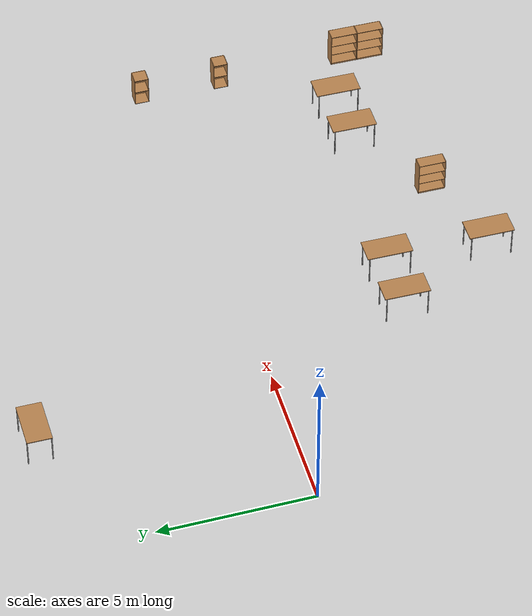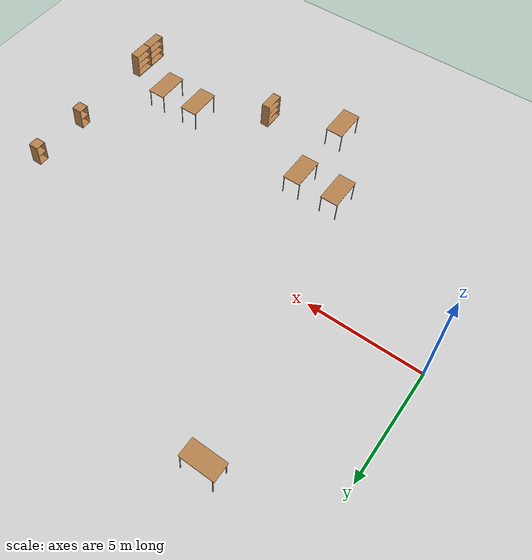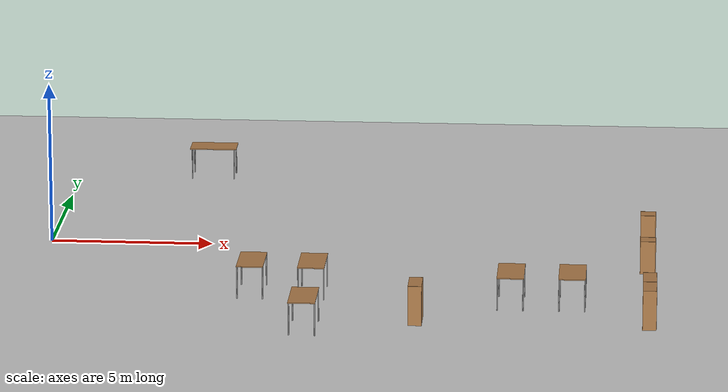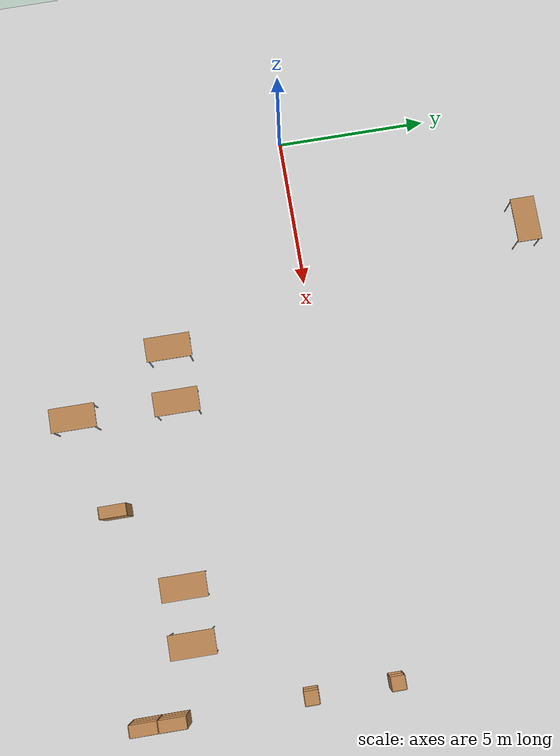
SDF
<sdf version="1.6">
 <world name="default">
  <model name="ground_plane">
   <static>1</static>
   <link name="link">
    <collision name="collision">
     <geometry><plane><normal>0 0 1</normal><size>100 100</size></plane></geometry>
     <surface>
      <contact><collide_bitmask>65535</collide_bitmask></contact>
      <friction><ode><mu>100</mu><mu2>50</mu2></ode></friction>
     </surface>
    </collision>
    <visual name="visual">
     <cast_shadows>0</cast_shadows>
     <geometry><plane><normal>0 0 1</normal><size>100 100</size></plane></geometry>
     <material>
      <script><uri>file://media/materials/scripts/gazebo.material</uri><name>Gazebo/Grey</name></script>
     </material>
    </visual>
   </link>
  </model>
  <model name="bookshelf_clone_2">
   <static>1</static>
   <link name="link">
    <inertial><mass>1</mass></inertial>
    <collision name="back">
     <pose>0 0.005 0.6 0 -0 0</pose>
     <geometry><box><size>0.9 0.01 1.2</size></box></geometry>
    </collision>
    <visual name="visual1">
     <pose>0 0.005 0.6 0 -0 0</pose>
     <geometry><box><size>0.9 0.01 1.2</size></box></geometry>
     <material>
      <script><uri>file://media/materials/scripts/gazebo.material</uri><name>Gazebo/Wood</name></script>
     </material>
    </visual>
    <collision name="left_side">
     <pose>0.45 -0.195 0.6 0 -0 0</pose>
     <geometry><box><size>0.02 0.4 1.2</size></box></geometry>
    </collision>
    <visual name="visual2">
     <pose>0.45 -0.195 0.6 0 -0 0</pose>
     <geometry><box><size>0.02 0.4 1.2</size></box></geometry>
     <material>
      <script><uri>file://media/materials/scripts/gazebo.material</uri><name>Gazebo/Wood</name></script>
     </material>
    </visual>
    <collision name="right_side">
     <pose>-0.45 -0.195 0.6 0 -0 0</pose>
     <geometry><box><size>0.02 0.4 1.2</size></box></geometry>
    </collision>
    <visual name="visual3">
     <pose>-0.45 -0.195 0.6 0 -0 0</pose>
     <geometry><box><size>0.02 0.4 1.2</size></box></geometry>
     <material>
      <script><uri>file://media/materials/scripts/gazebo.material</uri><name>Gazebo/Wood</name></script>
     </material>
    </visual>
    <collision name="bottom">
     <pose>0 -0.195 0.03 0 -0 0</pose>
     <geometry><box><size>0.88 0.4 0.06</size></box></geometry>
    </collision>
    <visual name="visual4">
     <pose>0 -0.195 0.03 0 -0 0</pose>
     <geometry><box><size>0.88 0.4 0.06</size></box></geometry>
     <material>
      <script><uri>file://media/materials/scripts/gazebo.material</uri><name>Gazebo/Wood</name></script>
     </material>
    </visual>
    <collision name="top">
     <pose>0 -0.195 1.19 0 -0 0</pose>
     <geometry><box><size>0.88 0.4 0.02</size></box></geometry>
    </collision>
    <visual name="visual5">
     <pose>0 -0.195 1.19 0 -0 0</pose>
     <geometry><box><size>0.88 0.4 0.02</size></box></geometry>
     <material>
      <script><uri>file://media/materials/scripts/gazebo.material</uri><name>Gazebo/Wood</name></script>
     </material>
    </visual>
    <collision name="low_shelf">
     <pose>0 -0.195 0.43 0 -0 0</pose>
     <geometry><box><size>0.88 0.4 0.02</size></box></geometry>
    </collision>
    <visual name="visual6">
     <pose>0 -0.195 0.43 0 -0 0</pose>
     <geometry><box><size>0.88 0.4 0.02</size></box></geometry>
     <material>
      <script><uri>file://media/materials/scripts/gazebo.material</uri><name>Gazebo/Wood</name></script>
     </material>
    </visual>
    <collision name="high_shelf">
     <pose>0 -0.195 0.8 0 -0 0</pose>
     <geometry><box><size>0.88 0.4 0.02</size></box></geometry>
    </collision>
    <visual name="visual7">
     <pose>0 -0.195 0.8 0 -0 0</pose>
     <geometry><box><size>0.88 0.4 0.02</size></box></geometry>
     <material>
      <script><uri>file://media/materials/scripts/gazebo.material</uri><name>Gazebo/Wood</name></script>
     </material>
    </visual>
   </link>
   <pose>18.6839 -7.31566 0 0 0 -1.57057</pose>
  </model>
  <model name="bookshelf_clone_3">
   <static>1</static>
   <link name="link">
    <inertial><mass>1</mass></inertial>
    <collision name="back">
     <pose>0 0.005 0.6 0 -0 0</pose>
     <geometry><box><size>0.9 0.01 1.2</size></box></geometry>
    </collision>
    <visual name="visual1">
     <pose>0 0.005 0.6 0 -0 0</pose>
     <geometry><box><size>0.9 0.01 1.2</size></box></geometry>
     <material>
      <script><uri>file://media/materials/scripts/gazebo.material</uri><name>Gazebo/Wood</name></script>
     </material>
    </visual>
    <collision name="left_side">
     <pose>0.45 -0.195 0.6 0 -0 0</pose>
     <geometry><box><size>0.02 0.4 1.2</size></box></geometry>
    </collision>
    <visual name="visual2">
     <pose>0.45 -0.195 0.6 0 -0 0</pose>
     <geometry><box><size>0.02 0.4 1.2</size></box></geometry>
     <material>
      <script><uri>file://media/materials/scripts/gazebo.material</uri><name>Gazebo/Wood</name></script>
     </material>
    </visual>
    <collision name="right_side">
     <pose>-0.45 -0.195 0.6 0 -0 0</pose>
     <geometry><box><size>0.02 0.4 1.2</size></box></geometry>
    </collision>
    <visual name="visual3">
     <pose>-0.45 -0.195 0.6 0 -0 0</pose>
     <geometry><box><size>0.02 0.4 1.2</size></box></geometry>
     <material>
      <script><uri>file://media/materials/scripts/gazebo.material</uri><name>Gazebo/Wood</name></script>
     </material>
    </visual>
    <collision name="bottom">
     <pose>0 -0.195 0.03 0 -0 0</pose>
     <geometry><box><size>0.88 0.4 0.06</size></box></geometry>
    </collision>
    <visual name="visual4">
     <pose>0 -0.195 0.03 0 -0 0</pose>
     <geometry><box><size>0.88 0.4 0.06</size></box></geometry>
     <material>
      <script><uri>file://media/materials/scripts/gazebo.material</uri><name>Gazebo/Wood</name></script>
     </material>
    </visual>
    <collision name="top">
     <pose>0 -0.195 1.19 0 -0 0</pose>
     <geometry><box><size>0.88 0.4 0.02</size></box></geometry>
    </collision>
    <visual name="visual5">
     <pose>0 -0.195 1.19 0 -0 0</pose>
     <geometry><box><size>0.88 0.4 0.02</size></box></geometry>
     <material>
      <script><uri>file://media/materials/scripts/gazebo.material</uri><name>Gazebo/Wood</name></script>
     </material>
    </visual>
    <collision name="low_shelf">
     <pose>0 -0.195 0.43 0 -0 0</pose>
     <geometry><box><size>0.88 0.4 0.02</size></box></geometry>
    </collision>
    <visual name="visual6">
     <pose>0 -0.195 0.43 0 -0 0</pose>
     <geometry><box><size>0.88 0.4 0.02</size></box></geometry>
     <material>
      <script><uri>file://media/materials/scripts/gazebo.material</uri><name>Gazebo/Wood</name></script>
     </material>
    </visual>
    <collision name="high_shelf">
     <pose>0 -0.195 0.8 0 -0 0</pose>
     <geometry><box><size>0.88 0.4 0.02</size></box></geometry>
    </collision>
    <visual name="visual7">
     <pose>0 -0.195 0.8 0 -0 0</pose>
     <geometry><box><size>0.88 0.4 0.02</size></box></geometry>
     <material>
      <script><uri>file://media/materials/scripts/gazebo.material</uri><name>Gazebo/Wood</name></script>
     </material>
    </visual>
   </link>
   <pose>18.6876 -6.40125 0 0 0 -1.57057</pose>
  </model>
  <model name="bookshelf_clone_8">
   <static>1</static>
   <link name="link">
    <inertial><mass>1</mass></inertial>
    <collision name="back">
     <pose>0 0.005 0.6 0 -0 0</pose>
     <geometry><box><size>0.9 0.01 1.2</size></box></geometry>
    </collision>
    <visual name="visual1">
     <pose>0 0.005 0.6 0 -0 0</pose>
     <geometry><box><size>0.9 0.01 1.2</size></box></geometry>
     <material>
      <script><uri>file://media/materials/scripts/gazebo.material</uri><name>Gazebo/Wood</name></script>
     </material>
    </visual>
    <collision name="left_side">
     <pose>0.45 -0.195 0.6 0 -0 0</pose>
     <geometry><box><size>0.02 0.4 1.2</size></box></geometry>
    </collision>
    <visual name="visual2">
     <pose>0.45 -0.195 0.6 0 -0 0</pose>
     <geometry><box><size>0.02 0.4 1.2</size></box></geometry>
     <material>
      <script><uri>file://media/materials/scripts/gazebo.material</uri><name>Gazebo/Wood</name></script>
     </material>
    </visual>
    <collision name="right_side">
     <pose>-0.45 -0.195 0.6 0 -0 0</pose>
     <geometry><box><size>0.02 0.4 1.2</size></box></geometry>
    </collision>
    <visual name="visual3">
     <pose>-0.45 -0.195 0.6 0 -0 0</pose>
     <geometry><box><size>0.02 0.4 1.2</size></box></geometry>
     <material>
      <script><uri>file://media/materials/scripts/gazebo.material</uri><name>Gazebo/Wood</name></script>
     </material>
    </visual>
    <collision name="bottom">
     <pose>0 -0.195 0.03 0 -0 0</pose>
     <geometry><box><size>0.88 0.4 0.06</size></box></geometry>
    </collision>
    <visual name="visual4">
     <pose>0 -0.195 0.03 0 -0 0</pose>
     <geometry><box><size>0.88 0.4 0.06</size></box></geometry>
     <material>
      <script><uri>file://media/materials/scripts/gazebo.material</uri><name>Gazebo/Wood</name></script>
     </material>
    </visual>
    <collision name="top">
     <pose>0 -0.195 1.19 0 -0 0</pose>
     <geometry><box><size>0.88 0.4 0.02</size></box></geometry>
    </collision>
    <visual name="visual5">
     <pose>0 -0.195 1.19 0 -0 0</pose>
     <geometry><box><size>0.88 0.4 0.02</size></box></geometry>
     <material>
      <script><uri>file://media/materials/scripts/gazebo.material</uri><name>Gazebo/Wood</name></script>
     </material>
    </visual>
    <collision name="low_shelf">
     <pose>0 -0.195 0.43 0 -0 0</pose>
     <geometry><box><size>0.88 0.4 0.02</size></box></geometry>
    </collision>
    <visual name="visual6">
     <pose>0 -0.195 0.43 0 -0 0</pose>
     <geometry><box><size>0.88 0.4 0.02</size></box></geometry>
     <material>
      <script><uri>file://media/materials/scripts/gazebo.material</uri><name>Gazebo/Wood</name></script>
     </material>
    </visual>
    <collision name="high_shelf">
     <pose>0 -0.195 0.8 0 -0 0</pose>
     <geometry><box><size>0.88 0.4 0.02</size></box></geometry>
    </collision>
    <visual name="visual7">
     <pose>0 -0.195 0.8 0 -0 0</pose>
     <geometry><box><size>0.88 0.4 0.02</size></box></geometry>
     <material>
      <script><uri>file://media/materials/scripts/gazebo.material</uri><name>Gazebo/Wood</name></script>
     </material>
    </visual>
   </link>
   <pose>11.8617 -7.31522 0 0 0 -1.57057</pose>
  </model>
  <model name="table_clone_clone">
   <static>1</static>
   <link name="link">
    <collision name="surface">
     <pose>0 0 1 0 -0 0</pose>
     <geometry><box><size>1.5 0.8 0.03</size></box></geometry>
     <surface><friction><ode><mu>0.6</mu><mu2>0.6</mu2></ode></friction></surface>
    </collision>
    <visual name="visual1">
     <pose>0 0 1 0 -0 0</pose>
     <geometry><box><size>1.5 0.8 0.03</size></box></geometry>
     <material>
      <script><uri>file://media/materials/scripts/gazebo.material</uri><name>Gazebo/Wood</name></script>
     </material>
    </visual>
    <collision name="front_left_leg">
     <pose>0.68 0.38 0.5 0 -0 0</pose>
     <geometry><cylinder><radius>0.02</radius><length>1</length></cylinder></geometry>
    </collision>
    <visual name="front_left_leg">
     <pose>0.68 0.38 0.5 0 -0 0</pose>
     <geometry><cylinder><radius>0.02</radius><length>1</length></cylinder></geometry>
     <material>
      <script><uri>file://media/materials/scripts/gazebo.material</uri><name>Gazebo/Grey</name></script>
     </material>
    </visual>
    <collision name="front_right_leg">
     <pose>0.68 -0.38 0.5 0 -0 0</pose>
     <geometry><cylinder><radius>0.02</radius><length>1</length></cylinder></geometry>
    </collision>
    <visual name="front_right_leg">
     <pose>0.68 -0.38 0.5 0 -0 0</pose>
     <geometry><cylinder><radius>0.02</radius><length>1</length></cylinder></geometry>
     <material>
      <script><uri>file://media/materials/scripts/gazebo.material</uri><name>Gazebo/Grey</name></script>
     </material>
    </visual>
    <collision name="back_right_leg">
     <pose>-0.68 -0.38 0.5 0 -0 0</pose>
     <geometry><cylinder><radius>0.02</radius><length>1</length></cylinder></geometry>
    </collision>
    <visual name="back_right_leg">
     <pose>-0.68 -0.38 0.5 0 -0 0</pose>
     <geometry><cylinder><radius>0.02</radius><length>1</length></cylinder></geometry>
     <material>
      <script><uri>file://media/materials/scripts/gazebo.material</uri><name>Gazebo/Grey</name></script>
     </material>
    </visual>
    <collision name="back_left_leg">
     <pose>-0.68 0.38 0.5 0 -0 0</pose>
     <geometry><cylinder><radius>0.02</radius><length>1</length></cylinder></geometry>
    </collision>
    <visual name="back_left_leg">
     <pose>-0.68 0.38 0.5 0 -0 0</pose>
     <geometry><cylinder><radius>0.02</radius><length>1</length></cylinder></geometry>
     <material>
      <script><uri>file://media/materials/scripts/gazebo.material</uri><name>Gazebo/Grey</name></script>
     </material>
    </visual>
   </link>
   <pose>4.31345 7.61468 0 0 -0 0</pose>
  </model>
  <model name="table_clone_0_clone_clone_0">
   <static>1</static>
   <link name="link">
    <collision name="surface">
     <pose>0 0 1 0 -0 0</pose>
     <geometry><box><size>1.5 0.8 0.03</size></box></geometry>
     <surface><friction><ode><mu>0.6</mu><mu2>0.6</mu2></ode></friction></surface>
    </collision>
    <visual name="visual1">
     <pose>0 0 1 0 -0 0</pose>
     <geometry><box><size>1.5 0.8 0.03</size></box></geometry>
     <material>
      <script><uri>file://media/materials/scripts/gazebo.material</uri><name>Gazebo/Wood</name></script>
     </material>
    </visual>
    <collision name="front_left_leg">
     <pose>0.68 0.38 0.5 0 -0 0</pose>
     <geometry><cylinder><radius>0.02</radius><length>1</length></cylinder></geometry>
    </collision>
    <visual name="front_left_leg">
     <pose>0.68 0.38 0.5 0 -0 0</pose>
     <geometry><cylinder><radius>0.02</radius><length>1</length></cylinder></geometry>
     <material>
      <script><uri>file://media/materials/scripts/gazebo.material</uri><name>Gazebo/Grey</name></script>
     </material>
    </visual>
    <collision name="front_right_leg">
     <pose>0.68 -0.38 0.5 0 -0 0</pose>
     <geometry><cylinder><radius>0.02</radius><length>1</length></cylinder></geometry>
    </collision>
    <visual name="front_right_leg">
     <pose>0.68 -0.38 0.5 0 -0 0</pose>
     <geometry><cylinder><radius>0.02</radius><length>1</length></cylinder></geometry>
     <material>
      <script><uri>file://media/materials/scripts/gazebo.material</uri><name>Gazebo/Grey</name></script>
     </material>
    </visual>
    <collision name="back_right_leg">
     <pose>-0.68 -0.38 0.5 0 -0 0</pose>
     <geometry><cylinder><radius>0.02</radius><length>1</length></cylinder></geometry>
    </collision>
    <visual name="back_right_leg">
     <pose>-0.68 -0.38 0.5 0 -0 0</pose>
     <geometry><cylinder><radius>0.02</radius><length>1</length></cylinder></geometry>
     <material>
      <script><uri>file://media/materials/scripts/gazebo.material</uri><name>Gazebo/Grey</name></script>
     </material>
    </visual>
    <collision name="back_left_leg">
     <pose>-0.68 0.38 0.5 0 -0 0</pose>
     <geometry><cylinder><radius>0.02</radius><length>1</length></cylinder></geometry>
    </collision>
    <visual name="back_left_leg">
     <pose>-0.68 0.38 0.5 0 -0 0</pose>
     <geometry><cylinder><radius>0.02</radius><length>1</length></cylinder></geometry>
     <material>
      <script><uri>file://media/materials/scripts/gazebo.material</uri><name>Gazebo/Grey</name></script>
     </material>
    </visual>
   </link>
   <pose>8.45975 -8.20291 0 0 0 -1.57488</pose>
  </model>
  <model name="table_clone_0_clone_clone_1">
   <static>1</static>
   <link name="link">
    <collision name="surface">
     <pose>0 0 1 0 -0 0</pose>
     <geometry><box><size>1.5 0.8 0.03</size></box></geometry>
     <surface><friction><ode><mu>0.6</mu><mu2>0.6</mu2></ode></friction></surface>
    </collision>
    <visual name="visual1">
     <pose>0 0 1 0 -0 0</pose>
     <geometry><box><size>1.5 0.8 0.03</size></box></geometry>
     <material>
      <script><uri>file://media/materials/scripts/gazebo.material</uri><name>Gazebo/Wood</name></script>
     </material>
    </visual>
    <collision name="front_left_leg">
     <pose>0.68 0.38 0.5 0 -0 0</pose>
     <geometry><cylinder><radius>0.02</radius><length>1</length></cylinder></geometry>
    </collision>
    <visual name="front_left_leg">
     <pose>0.68 0.38 0.5 0 -0 0</pose>
     <geometry><cylinder><radius>0.02</radius><length>1</length></cylinder></geometry>
     <material>
      <script><uri>file://media/materials/scripts/gazebo.material</uri><name>Gazebo/Grey</name></script>
     </material>
    </visual>
    <collision name="front_right_leg">
     <pose>0.68 -0.38 0.5 0 -0 0</pose>
     <geometry><cylinder><radius>0.02</radius><length>1</length></cylinder></geometry>
    </collision>
    <visual name="front_right_leg">
     <pose>0.68 -0.38 0.5 0 -0 0</pose>
     <geometry><cylinder><radius>0.02</radius><length>1</length></cylinder></geometry>
     <material>
      <script><uri>file://media/materials/scripts/gazebo.material</uri><name>Gazebo/Grey</name></script>
     </material>
    </visual>
    <collision name="back_right_leg">
     <pose>-0.68 -0.38 0.5 0 -0 0</pose>
     <geometry><cylinder><radius>0.02</radius><length>1</length></cylinder></geometry>
    </collision>
    <visual name="back_right_leg">
     <pose>-0.68 -0.38 0.5 0 -0 0</pose>
     <geometry><cylinder><radius>0.02</radius><length>1</length></cylinder></geometry>
     <material>
      <script><uri>file://media/materials/scripts/gazebo.material</uri><name>Gazebo/Grey</name></script>
     </material>
    </visual>
    <collision name="back_left_leg">
     <pose>-0.68 0.38 0.5 0 -0 0</pose>
     <geometry><cylinder><radius>0.02</radius><length>1</length></cylinder></geometry>
    </collision>
    <visual name="back_left_leg">
     <pose>-0.68 0.38 0.5 0 -0 0</pose>
     <geometry><cylinder><radius>0.02</radius><length>1</length></cylinder></geometry>
     <material>
      <script><uri>file://media/materials/scripts/gazebo.material</uri><name>Gazebo/Grey</name></script>
     </material>
    </visual>
   </link>
   <pose>8.47482 -4.80973 0 0 0 -1.57488</pose>
  </model>
  <model name="table_clone_0_clone_clone_2">
   <static>1</static>
   <link name="link">
    <collision name="surface">
     <pose>0 0 1 0 -0 0</pose>
     <geometry><box><size>1.5 0.8 0.03</size></box></geometry>
     <surface><friction><ode><mu>0.6</mu><mu2>0.6</mu2></ode></friction></surface>
    </collision>
    <visual name="visual1">
     <pose>0 0 1 0 -0 0</pose>
     <geometry><box><size>1.5 0.8 0.03</size></box></geometry>
     <material>
      <script><uri>file://media/materials/scripts/gazebo.material</uri><name>Gazebo/Wood</name></script>
     </material>
    </visual>
    <collision name="front_left_leg">
     <pose>0.68 0.38 0.5 0 -0 0</pose>
     <geometry><cylinder><radius>0.02</radius><length>1</length></cylinder></geometry>
    </collision>
    <visual name="front_left_leg">
     <pose>0.68 0.38 0.5 0 -0 0</pose>
     <geometry><cylinder><radius>0.02</radius><length>1</length></cylinder></geometry>
     <material>
      <script><uri>file://media/materials/scripts/gazebo.material</uri><name>Gazebo/Grey</name></script>
     </material>
    </visual>
    <collision name="front_right_leg">
     <pose>0.68 -0.38 0.5 0 -0 0</pose>
     <geometry><cylinder><radius>0.02</radius><length>1</length></cylinder></geometry>
    </collision>
    <visual name="front_right_leg">
     <pose>0.68 -0.38 0.5 0 -0 0</pose>
     <geometry><cylinder><radius>0.02</radius><length>1</length></cylinder></geometry>
     <material>
      <script><uri>file://media/materials/scripts/gazebo.material</uri><name>Gazebo/Grey</name></script>
     </material>
    </visual>
    <collision name="back_right_leg">
     <pose>-0.68 -0.38 0.5 0 -0 0</pose>
     <geometry><cylinder><radius>0.02</radius><length>1</length></cylinder></geometry>
    </collision>
    <visual name="back_right_leg">
     <pose>-0.68 -0.38 0.5 0 -0 0</pose>
     <geometry><cylinder><radius>0.02</radius><length>1</length></cylinder></geometry>
     <material>
      <script><uri>file://media/materials/scripts/gazebo.material</uri><name>Gazebo/Grey</name></script>
     </material>
    </visual>
    <collision name="back_left_leg">
     <pose>-0.68 0.38 0.5 0 -0 0</pose>
     <geometry><cylinder><radius>0.02</radius><length>1</length></cylinder></geometry>
    </collision>
    <visual name="back_left_leg">
     <pose>-0.68 0.38 0.5 0 -0 0</pose>
     <geometry><cylinder><radius>0.02</radius><length>1</length></cylinder></geometry>
     <material>
      <script><uri>file://media/materials/scripts/gazebo.material</uri><name>Gazebo/Grey</name></script>
     </material>
    </visual>
   </link>
   <pose>6.65252 -4.80411 0 0 0 -1.57488</pose>
  </model>
  <model name="table_clone_0_clone_clone_0_clone_1">
   <static>1</static>
   <link name="link">
    <collision name="surface">
     <pose>0 0 1 0 -0 0</pose>
     <geometry><box><size>1.5 0.8 0.03</size></box></geometry>
     <surface><friction><ode><mu>0.6</mu><mu2>0.6</mu2></ode></friction></surface>
    </collision>
    <visual name="visual1">
     <pose>0 0 1 0 -0 0</pose>
     <geometry><box><size>1.5 0.8 0.03</size></box></geometry>
     <material>
      <script><uri>file://media/materials/scripts/gazebo.material</uri><name>Gazebo/Wood</name></script>
     </material>
    </visual>
    <collision name="front_left_leg">
     <pose>0.68 0.38 0.5 0 -0 0</pose>
     <geometry><cylinder><radius>0.02</radius><length>1</length></cylinder></geometry>
    </collision>
    <visual name="front_left_leg">
     <pose>0.68 0.38 0.5 0 -0 0</pose>
     <geometry><cylinder><radius>0.02</radius><length>1</length></cylinder></geometry>
     <material>
      <script><uri>file://media/materials/scripts/gazebo.material</uri><name>Gazebo/Grey</name></script>
     </material>
    </visual>
    <collision name="front_right_leg">
     <pose>0.68 -0.38 0.5 0 -0 0</pose>
     <geometry><cylinder><radius>0.02</radius><length>1</length></cylinder></geometry>
    </collision>
    <visual name="front_right_leg">
     <pose>0.68 -0.38 0.5 0 -0 0</pose>
     <geometry><cylinder><radius>0.02</radius><length>1</length></cylinder></geometry>
     <material>
      <script><uri>file://media/materials/scripts/gazebo.material</uri><name>Gazebo/Grey</name></script>
     </material>
    </visual>
    <collision name="back_right_leg">
     <pose>-0.68 -0.38 0.5 0 -0 0</pose>
     <geometry><cylinder><radius>0.02</radius><length>1</length></cylinder></geometry>
    </collision>
    <visual name="back_right_leg">
     <pose>-0.68 -0.38 0.5 0 -0 0</pose>
     <geometry><cylinder><radius>0.02</radius><length>1</length></cylinder></geometry>
     <material>
      <script><uri>file://media/materials/scripts/gazebo.material</uri><name>Gazebo/Grey</name></script>
     </material>
    </visual>
    <collision name="back_left_leg">
     <pose>-0.68 0.38 0.5 0 -0 0</pose>
     <geometry><cylinder><radius>0.02</radius><length>1</length></cylinder></geometry>
    </collision>
    <visual name="back_left_leg">
     <pose>-0.68 0.38 0.5 0 -0 0</pose>
     <geometry><cylinder><radius>0.02</radius><length>1</length></cylinder></geometry>
     <material>
      <script><uri>file://media/materials/scripts/gazebo.material</uri><name>Gazebo/Grey</name></script>
     </material>
    </visual>
   </link>
   <pose>16.2155 -5.45535 0 0 0 -1.57488</pose>
  </model>
  <model name="table_clone_0_clone_clone_0_clone_2">
   <static>1</static>
   <link name="link">
    <collision name="surface">
     <pose>0 0 1 0 -0 0</pose>
     <geometry><box><size>1.5 0.8 0.03</size></box></geometry>
     <surface><friction><ode><mu>0.6</mu><mu2>0.6</mu2></ode></friction></surface>
    </collision>
    <visual name="visual1">
     <pose>0 0 1 0 -0 0</pose>
     <geometry><box><size>1.5 0.8 0.03</size></box></geometry>
     <material>
      <script><uri>file://media/materials/scripts/gazebo.material</uri><name>Gazebo/Wood</name></script>
     </material>
    </visual>
    <collision name="front_left_leg">
     <pose>0.68 0.38 0.5 0 -0 0</pose>
     <geometry><cylinder><radius>0.02</radius><length>1</length></cylinder></geometry>
    </collision>
    <visual name="front_left_leg">
     <pose>0.68 0.38 0.5 0 -0 0</pose>
     <geometry><cylinder><radius>0.02</radius><length>1</length></cylinder></geometry>
     <material>
      <script><uri>file://media/materials/scripts/gazebo.material</uri><name>Gazebo/Grey</name></script>
     </material>
    </visual>
    <collision name="front_right_leg">
     <pose>0.68 -0.38 0.5 0 -0 0</pose>
     <geometry><cylinder><radius>0.02</radius><length>1</length></cylinder></geometry>
    </collision>
    <visual name="front_right_leg">
     <pose>0.68 -0.38 0.5 0 -0 0</pose>
     <geometry><cylinder><radius>0.02</radius><length>1</length></cylinder></geometry>
     <material>
      <script><uri>file://media/materials/scripts/gazebo.material</uri><name>Gazebo/Grey</name></script>
     </material>
    </visual>
    <collision name="back_right_leg">
     <pose>-0.68 -0.38 0.5 0 -0 0</pose>
     <geometry><cylinder><radius>0.02</radius><length>1</length></cylinder></geometry>
    </collision>
    <visual name="back_right_leg">
     <pose>-0.68 -0.38 0.5 0 -0 0</pose>
     <geometry><cylinder><radius>0.02</radius><length>1</length></cylinder></geometry>
     <material>
      <script><uri>file://media/materials/scripts/gazebo.material</uri><name>Gazebo/Grey</name></script>
     </material>
    </visual>
    <collision name="back_left_leg">
     <pose>-0.68 0.38 0.5 0 -0 0</pose>
     <geometry><cylinder><radius>0.02</radius><length>1</length></cylinder></geometry>
    </collision>
    <visual name="back_left_leg">
     <pose>-0.68 0.38 0.5 0 -0 0</pose>
     <geometry><cylinder><radius>0.02</radius><length>1</length></cylinder></geometry>
     <material>
      <script><uri>file://media/materials/scripts/gazebo.material</uri><name>Gazebo/Grey</name></script>
     </material>
    </visual>
   </link>
   <pose>14.4005 -5.46082 0 0 0 -1.57488</pose>
  </model>
  <model name="cabinet">
   <static>1</static>
   <link name="cabinet_bottom_plate">
    <inertial>
     <pose>0 0 -1 0 -0 0</pose>
     <inertia><ixx>2.05</ixx><ixy>0</ixy><ixz>0</ixz><iyy>2.05</iyy><iyz>0</iyz><izz>2.05</izz></inertia>
     <mass>25</mass>
    </inertial>
    <collision name="cabinet_bottom_plate_geom">
     <pose>0 0 0.01 0 -0 0</pose>
     <geometry><box><size>0.45 0.45 0.02</size></box></geometry>
    </collision>
    <visual name="cabinet_bottom_plate_geom_visual">
     <pose>0 0 0.01 0 -0 0</pose>
     <geometry><box><size>0.45 0.45 0.02</size></box></geometry>
     <material>
      <script><uri>file://media/materials/scripts/gazebo.material</uri><name>Gazebo/Wood</name></script>
     </material>
    </visual>
    <collision name="cabinet_bottom_plate_geom_cabinet_back_plate">
     <pose>0.235 0 0.51 0 -0 0</pose>
     <geometry><box><size>0.02 0.45 1.02</size></box></geometry>
    </collision>
    <visual name="cabinet_bottom_plate_geom_cabinet_back_plate_visual">
     <pose>0.235 0 0.51 0 -0 0</pose>
     <geometry><box><size>0.02 0.45 1.02</size></box></geometry>
     <material>
      <script><uri>file://media/materials/scripts/gazebo.material</uri><name>Gazebo/Wood</name></script>
     </material>
    </visual>
    <collision name="cabinet_bottom_plate_geom_cabinet_left_plate">
     <pose>0 0.235 0.51 0 -0 0</pose>
     <geometry><box><size>0.45 0.02 1.02</size></box></geometry>
    </collision>
    <visual name="cabinet_bottom_plate_geom_cabinet_left_plate_visual">
     <pose>0 0.235 0.51 0 -0 0</pose>
     <geometry><box><size>0.45 0.02 1.02</size></box></geometry>
     <material>
      <script><uri>file://media/materials/scripts/gazebo.material</uri><name>Gazebo/Wood</name></script>
     </material>
    </visual>
    <collision name="cabinet_bottom_plate_geom_cabinet_middle_plate">
     <pose>0 0 0.51 0 -0 0</pose>
     <geometry><box><size>0.45 0.45 0.02</size></box></geometry>
    </collision>
    <visual name="cabinet_bottom_plate_geom_cabinet_middle_plate_visual">
     <pose>0 0 0.51 0 -0 0</pose>
     <geometry><box><size>0.45 0.45 0.02</size></box></geometry>
     <material>
      <script><uri>file://media/materials/scripts/gazebo.material</uri><name>Gazebo/Wood</name></script>
     </material>
    </visual>
    <collision name="cabinet_bottom_plate_geom_cabinet_right_plate">
     <pose>0 -0.235 0.51 0 -0 0</pose>
     <geometry><box><size>0.45 0.02 1.02</size></box></geometry>
    </collision>
    <visual name="cabinet_bottom_plate_geom_cabinet_right_plate_visual">
     <pose>0 -0.235 0.51 0 -0 0</pose>
     <geometry><box><size>0.45 0.02 1.02</size></box></geometry>
     <material>
      <script><uri>file://media/materials/scripts/gazebo.material</uri><name>Gazebo/Wood</name></script>
     </material>
    </visual>
    <collision name="cabinet_bottom_plate_geom_cabinet_top_plate">
     <pose>0 0 1.01 0 -0 0</pose>
     <geometry><box><size>0.45 0.45 0.02</size></box></geometry>
    </collision>
    <visual name="cabinet_bottom_plate_geom_cabinet_top_plate_visual">
     <pose>0 0 1.01 0 -0 0</pose>
     <geometry><box><size>0.45 0.45 0.02</size></box></geometry>
     <material>
      <script><uri>file://media/materials/scripts/gazebo.material</uri><name>Gazebo/Wood</name></script>
     </material>
    </visual>
   </link>
   <pose>18.435 0.729999 0 0 -0 0</pose>
  </model>
  <model name="cabinet_clone">
   <static>1</static>
   <link name="cabinet_bottom_plate">
    <inertial>
     <pose>0 0 -1 0 -0 0</pose>
     <inertia><ixx>2.05</ixx><ixy>0</ixy><ixz>0</ixz><iyy>2.05</iyy><iyz>0</iyz><izz>2.05</izz></inertia>
     <mass>25</mass>
    </inertial>
    <collision name="cabinet_bottom_plate_geom">
     <pose>0 0 0.01 0 -0 0</pose>
     <geometry><box><size>0.45 0.45 0.02</size></box></geometry>
    </collision>
    <visual name="cabinet_bottom_plate_geom_visual">
     <pose>0 0 0.01 0 -0 0</pose>
     <geometry><box><size>0.45 0.45 0.02</size></box></geometry>
     <material>
      <script><uri>file://media/materials/scripts/gazebo.material</uri><name>Gazebo/Wood</name></script>
     </material>
    </visual>
    <collision name="cabinet_bottom_plate_geom_cabinet_back_plate">
     <pose>0.235 0 0.51 0 -0 0</pose>
     <geometry><box><size>0.02 0.45 1.02</size></box></geometry>
    </collision>
    <visual name="cabinet_bottom_plate_geom_cabinet_back_plate_visual">
     <pose>0.235 0 0.51 0 -0 0</pose>
     <geometry><box><size>0.02 0.45 1.02</size></box></geometry>
     <material>
      <script><uri>file://media/materials/scripts/gazebo.material</uri><name>Gazebo/Wood</name></script>
     </material>
    </visual>
    <collision name="cabinet_bottom_plate_geom_cabinet_left_plate">
     <pose>0 0.235 0.51 0 -0 0</pose>
     <geometry><box><size>0.45 0.02 1.02</size></box></geometry>
    </collision>
    <visual name="cabinet_bottom_plate_geom_cabinet_left_plate_visual">
     <pose>0 0.235 0.51 0 -0 0</pose>
     <geometry><box><size>0.45 0.02 1.02</size></box></geometry>
     <material>
      <script><uri>file://media/materials/scripts/gazebo.material</uri><name>Gazebo/Wood</name></script>
     </material>
    </visual>
    <collision name="cabinet_bottom_plate_geom_cabinet_middle_plate">
     <pose>0 0 0.51 0 -0 0</pose>
     <geometry><box><size>0.45 0.45 0.02</size></box></geometry>
    </collision>
    <visual name="cabinet_bottom_plate_geom_cabinet_middle_plate_visual">
     <pose>0 0 0.51 0 -0 0</pose>
     <geometry><box><size>0.45 0.45 0.02</size></box></geometry>
     <material>
      <script><uri>file://media/materials/scripts/gazebo.material</uri><name>Gazebo/Wood</name></script>
     </material>
    </visual>
    <collision name="cabinet_bottom_plate_geom_cabinet_right_plate">
     <pose>0 -0.235 0.51 0 -0 0</pose>
     <geometry><box><size>0.45 0.02 1.02</size></box></geometry>
    </collision>
    <visual name="cabinet_bottom_plate_geom_cabinet_right_plate_visual">
     <pose>0 -0.235 0.51 0 -0 0</pose>
     <geometry><box><size>0.45 0.02 1.02</size></box></geometry>
     <material>
      <script><uri>file://media/materials/scripts/gazebo.material</uri><name>Gazebo/Wood</name></script>
     </material>
    </visual>
    <collision name="cabinet_bottom_plate_geom_cabinet_top_plate">
     <pose>0 0 1.01 0 -0 0</pose>
     <geometry><box><size>0.45 0.45 0.02</size></box></geometry>
    </collision>
    <visual name="cabinet_bottom_plate_geom_cabinet_top_plate_visual">
     <pose>0 0 1.01 0 -0 0</pose>
     <geometry><box><size>0.45 0.45 0.02</size></box></geometry>
     <material>
      <script><uri>file://media/materials/scripts/gazebo.material</uri><name>Gazebo/Wood</name></script>
     </material>
    </visual>
   </link>
   <pose>18.43 -2.02 0 0 -0 0</pose>
  </model>
 </world>
</sdf>
